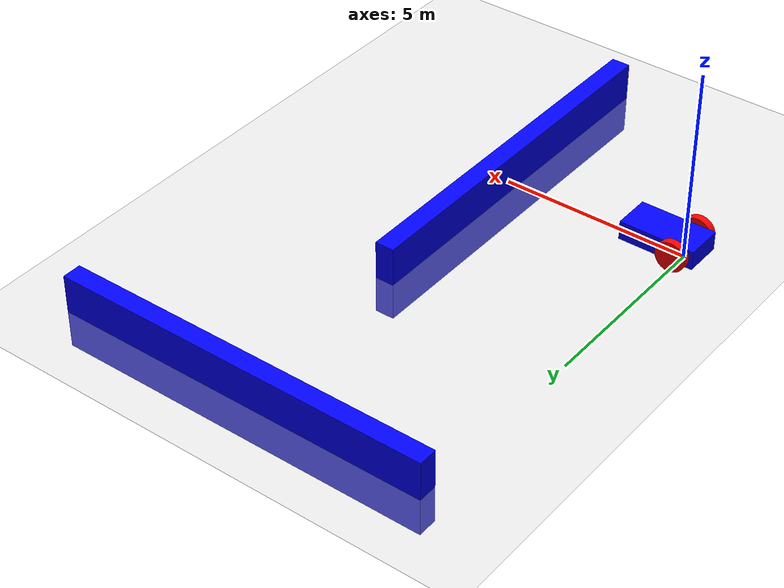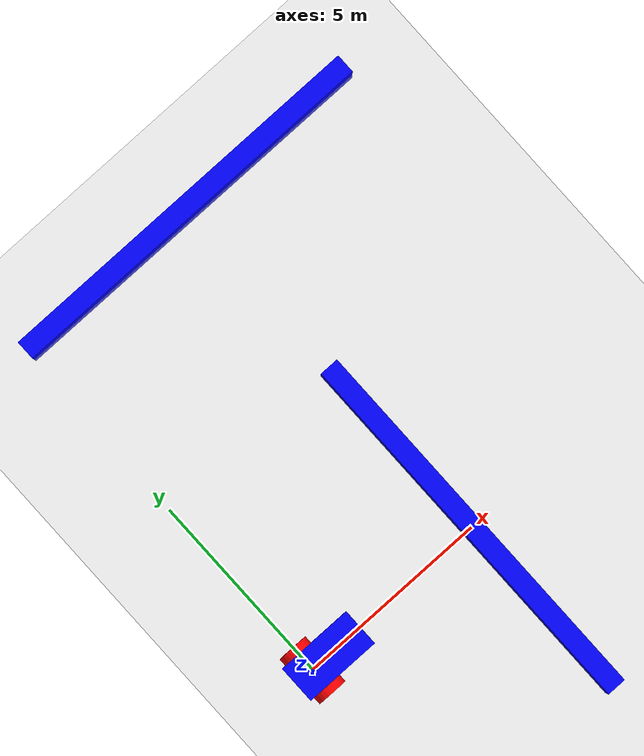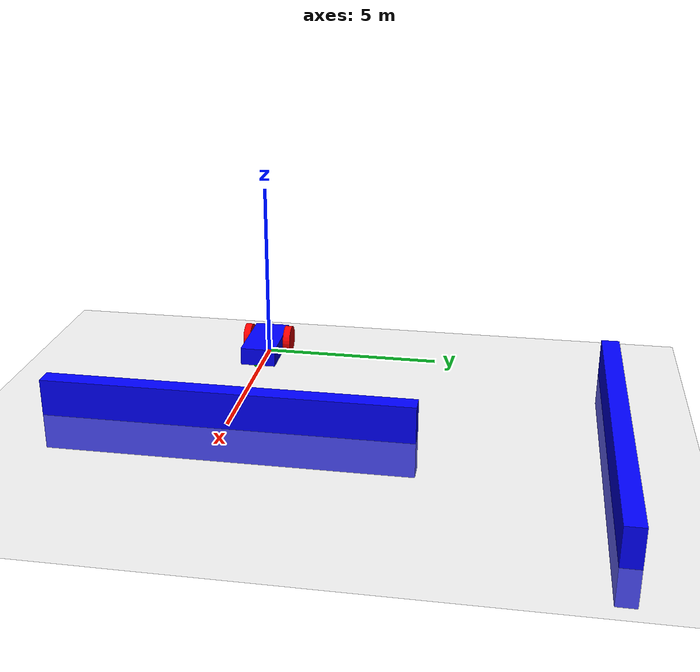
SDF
<?xml version="1.0" ?>
<sdf version="1.7">
    <world name="car_world">
        <physics name="1ms" type="ignored">
            <max_step_size>0.001</max_step_size>
            <real_time_factor>1.0</real_time_factor>
        </physics>
        <plugin
            filename="ignition-gazebo-physics-system"
            name="ignition::gazebo::systems::Physics">
        </plugin>
        <plugin
            filename="ignition-gazebo-user-commands-system"
            name="ignition::gazebo::systems::UserCommands">
        </plugin>
        <plugin
            filename="ignition-gazebo-scene-broadcaster-system"
            name="ignition::gazebo::systems::SceneBroadcaster">
        </plugin>
        <plugin filename="gz-sim-imu-system"
                name="gz::sim::systems::Imu">
        </plugin>
        <plugin filename="gz-sim-contact-system"
                name="gz::sim::systems::Contact">
        </plugin>
        <plugin
                filename="gz-sim-sensors-system"
                name="gz::sim::systems::Sensors">
                <render_engine>ogre2</render_engine>
        </plugin>
        <gui fullscreen="0">

            <!-- 3D scene -->
            <plugin filename="GzScene3D" name="3D View">
                <ignition-gui>
                <title>3D View</title>
                <property type="bool" key="showTitleBar">false</property>
                <property type="string" key="state">docked</property>
                </ignition-gui>

                <engine>ogre2</engine>
                <scene>scene</scene>
                <ambient_light>0.4 0.4 0.4</ambient_light>
                <background_color>0.8 0.8 0.8</background_color>
            </plugin>

            <!-- World control -->
            <plugin filename="WorldControl" name="World control">
                <ignition-gui>
                <title>World control</title>
                <property type="bool" key="showTitleBar">false</property>
                <property type="bool" key="resizable">false</property>
                <property type="double" key="height">72</property>
                <property type="double" key="width">121</property>
                <property type="double" key="z">1</property>

                <property type="string" key="state">floating</property>
                <anchors target="3D View">
                    <line own="left" target="left"/>
                    <line own="bottom" target="bottom"/>
                </anchors>
                </ignition-gui>

                <play_pause>true</play_pause>
                <step>true</step>
                <start_paused>true</start_paused>
                <service>/world/car_world/control</service>
                <stats_topic>/world/car_world/stats</stats_topic>
            </plugin>

            <!-- World statistics -->
            <plugin filename="WorldStats" name="World stats">
                <ignition-gui>
                <title>World stats</title>
                <property type="bool" key="showTitleBar">false</property>
                <property type="bool" key="resizable">false</property>
                <property type="double" key="height">110</property>
                <property type="double" key="width">290</property>
                <property type="double" key="z">1</property>

                <property type="string" key="state">floating</property>
                <anchors target="3D View">
                    <line own="right" target="right"/>
                    <line own="bottom" target="bottom"/>
                </anchors>
                </ignition-gui>

                <sim_time>true</sim_time>
                <real_time>true</real_time>
                <real_time_factor>true</real_time_factor>
                <iterations>true</iterations>
                <topic>/world/car_world/stats</topic>

            </plugin>

            <!-- Entity tree -->
            <plugin filename="EntityTree" name="Entity tree">
            </plugin>

        </gui>

        <light type="directional" name="sun">
            <cast_shadows>true</cast_shadows>
            <pose>0 0 10 0 0 0</pose>
            <diffuse>0.8 0.8 0.8 1</diffuse>
            <specular>0.2 0.2 0.2 1</specular>
            <attenuation>
                <range>1000</range>
                <constant>0.9</constant>
                <linear>0.01</linear>
                <quadratic>0.001</quadratic>
            </attenuation>
            <direction>-0.5 0.1 -0.9</direction>
        </light>

        <model name="ground_plane">
            <static>true</static>
            <link name="link">
                <collision name="collision">
                <geometry>
                    <plane>
                    <normal>0 0 1</normal>
                    </plane>
                </geometry>
                </collision>
                <visual name="visual">
                <geometry>
                    <plane>
                    <normal>0 0 1</normal>
                    <size>100 100</size>
                    </plane>
                </geometry>
                <material>
                    <ambient>0.8 0.8 0.8 1</ambient>
                    <diffuse>0.8 0.8 0.8 1</diffuse>
                    <specular>0.8 0.8 0.8 1</specular>
                </material>
                </visual>
            </link>
        </model>

        <model name='vehicle_blue' canonical_link='chassis'>
            <pose relative_to='world'>0 0 0 0 0 0</pose>   <!--the pose is relative to the world by default-->
            <frame name="lidar_frame" attached_to='chassis'>
                <pose>0.8 0 0.5 0 0 0</pose>
            </frame>
            <!--chassis-->
            <link name='chassis'>
                <pose relative_to='__model__'>0.5 0 0.4 0 0 0</pose>
                <inertial> <!--inertial properties of the link mass, inertia matix-->
                    <mass>1.14395</mass>
                    <inertia>
                        <ixx>0.095329</ixx>
                        <ixy>0</ixy>
                        <ixz>0</ixz>
                        <iyy>0.381317</iyy>
                        <iyz>0</iyz>
                        <izz>0.476646</izz>
                    </inertia>
                </inertial>
                <visual name='visual'>
                    <geometry>
                        <box>
                            <size>2.0 1.0 0.5</size>
                        </box>
                    </geometry>
                    <!--Color of the link-->
                    <material>
                        <ambient>0.0 0.0 1.0 1</ambient>
                        <diffuse>0.0 0.0 1.0 1</diffuse>
                        <specular>0.0 0.0 1.0 1</specular>
                    </material>
                </visual>
                <collision name='collision'>
                    <geometry>
                        <box>
                            <size>2.0 1.0 0.5</size>
                        </box>
                    </geometry>
                </collision>
                <sensor name="imu_sensor" type="imu">
                    <always_on>1</always_on>
                    <update_rate>1</update_rate>
                    <visualize>true</visualize>
                    <topic>imu</topic>
                </sensor>
                <plugin
                    filename="gz-sim-sensors-system"
                    name="gz::sim::systems::Sensors">
                    <render_engine>ogre2</render_engine>
                </plugin>
                <sensor name='gpu_lidar' type='gpu_lidar'>"
                    <pose relative_to='lidar_frame'>0 0 0 0 0 0</pose>
                    <topic>lidar</topic>
                    <update_rate>10</update_rate>
                    <ray>
                        <scan>
                            <horizontal>
                                <samples>640</samples>
                                <resolution>1</resolution>
                                <min_angle>-1.396263</min_angle>
                                <max_angle>1.396263</max_angle>
                            </horizontal>
                            <vertical>
                                <samples>1</samples>
                                <resolution>0.01</resolution>
                                <min_angle>0</min_angle>
                                <max_angle>0</max_angle>
                            </vertical>
                        </scan>
                        <range>
                            <min>0.08</min>
                            <max>10.0</max>
                            <resolution>0.01</resolution>
                        </range>
                    </ray>
                    <always_on>1</always_on>
                    <visualize>true</visualize>
                </sensor>
            </link>

            <!--Left wheel-->
            <link name='left_wheel'>
                <pose relative_to="chassis">-0.5 0.6 0 -1.5707 0 0</pose> <!--angles are in radian-->
                <inertial>
                    <mass>1</mass>
                    <inertia>
                        <ixx>0.043333</ixx>
                        <ixy>0</ixy>
                        <ixz>0</ixz>
                        <iyy>0.043333</iyy>
                        <iyz>0</iyz>
                        <izz>0.08</izz>
                    </inertia>
                </inertial>
                <visual name='visual'>
                    <geometry>
                        <cylinder>
                            <radius>0.4</radius>
                            <length>0.2</length>
                        </cylinder>
                    </geometry>
                    <material>
                        <ambient>1.0 0.0 0.0 1</ambient>
                        <diffuse>1.0 0.0 0.0 1</diffuse>
                        <specular>1.0 0.0 0.0 1</specular>
                    </material>
                </visual>
                <collision name='collision'>
                    <geometry>
                        <cylinder>
                            <radius>0.4</radius>
                            <length>0.2</length>
                        </cylinder>
                    </geometry>
                </collision>
            </link>

            <!--The same as left wheel but with different position-->
            <link name='right_wheel'>
                <pose relative_to="chassis">-0.5 -0.6 0 -1.5707 0 0</pose> <!--angles are in radian-->
                <inertial>
                    <mass>1</mass>
                    <inertia>
                        <ixx>0.043333</ixx>
                        <ixy>0</ixy>
                        <ixz>0</ixz>
                        <iyy>0.043333</iyy>
                        <iyz>0</iyz>
                        <izz>0.08</izz>
                    </inertia>
                </inertial>
                <visual name='visual'>
                    <geometry>
                        <cylinder>
                            <radius>0.4</radius>
                            <length>0.2</length>
                        </cylinder>
                    </geometry>
                    <material>
                        <ambient>1.0 0.0 0.0 1</ambient>
                        <diffuse>1.0 0.0 0.0 1</diffuse>
                        <specular>1.0 0.0 0.0 1</specular>
                    </material>
                </visual>
                <collision name='collision'>
                    <geometry>
                        <cylinder>
                            <radius>0.4</radius>
                            <length>0.2</length>
                        </cylinder>
                    </geometry>
                </collision>
            </link>

            <!--arbitrary frame-->
            <frame name="caster_frame" attached_to='chassis'>
                <pose>0.8 0 -0.2 0 0 0</pose>
            </frame>

            <!--caster wheel-->
            <link name='caster'>
                <pose relative_to='caster_frame'/>
                <inertial>
                    <mass>1</mass>
                    <inertia>
                        <ixx>0.016</ixx>
                        <ixy>0</ixy>
                        <ixz>0</ixz>
                        <iyy>0.016</iyy>
                        <iyz>0</iyz>
                        <izz>0.016</izz>
                    </inertia>
                </inertial>
                <visual name='visual'>
                    <geometry>
                        <sphere>
                            <radius>0.2</radius>
                        </sphere>
                    </geometry>
                    <material>
                        <ambient>0.0 1 0.0 1</ambient>
                        <diffuse>0.0 1 0.0 1</diffuse>
                        <specular>0.0 1 0.0 1</specular>
                    </material>
                </visual>
                <collision name='collision'>
                    <geometry>
                        <sphere>
                            <radius>0.2</radius>
                        </sphere>
                    </geometry>
                </collision>
            </link>

            <!--left wheel joint-->
            <joint name='left_wheel_joint' type='revolute'>
                <pose relative_to='left_wheel'/>
                <parent>chassis</parent>
                <child>left_wheel</child>
                <axis>
                    <xyz expressed_in='__model__'>0 1 0</xyz> <!--can be descired to any frame or even arbitrary frames-->
                    <limit>
                        <lower>-1.79769e+308</lower>    <!--negative infinity-->
                        <upper>1.79769e+308</upper>     <!--positive infinity-->
                    </limit>
                </axis>
            </joint>

            <!--right wheel joint-->
            <joint name='right_wheel_joint' type='revolute'>
                <pose relative_to='right_wheel'/>
                <parent>chassis</parent>
                <child>right_wheel</child>
                <axis>
                    <xyz expressed_in='__model__'>0 1 0</xyz>
                    <limit>
                        <lower>-1.79769e+308</lower>    <!--negative infinity-->
                        <upper>1.79769e+308</upper>     <!--positive infinity-->
                    </limit>
                </axis>
            </joint>

            <!--caster wheel joint--> <!--pose defult value is the child-->
            <joint name='caster_wheel' type='ball'>
                <parent>chassis</parent>
                <child>caster</child>
            </joint>
            <plugin
                filename="gz-sim-diff-drive-system"
                name="gz::sim::systems::DiffDrive">
                <left_joint>left_wheel_joint</left_joint>
                <right_joint>right_wheel_joint</right_joint>
                <wheel_separation>1.25</wheel_separation>
                <wheel_radius>0.3</wheel_radius>
                <odom_publish_frequency>1</odom_publish_frequency>
            </plugin>
        </model>
        <model name='wall_1'>
            <static>true</static>
            <pose>5 0 0 0 0 0</pose><!--pose relative to the world-->
            <link name='box'>
                <visual name='visual'>
                    <geometry>
                        <box>
                            <size>0.5 10.0 2.0</size>
                        </box>
                    </geometry>
                    <material>
                        <ambient>0.0 0.0 1.0 1</ambient>
                        <diffuse>0.0 0.0 1.0 1</diffuse>
                        <specular>0.0 0.0 1.0 1</specular>
                    </material>
                </visual>
                <collision name='collision'>
                    <geometry>
                        <box>
                            <size>0.5 10.0 2.0</size>
                        </box>
                    </geometry>
                </collision>
                <sensor name='sensor_contact' type='contact'>
                    <contact>
                        <collision>collision</collision>
                    </contact>
                </sensor>
            </link>
            <plugin filename="gz-sim-touchplugin-system"
                    name="gz::sim::systems::TouchPlugin">
                <target>vehicle_blue</target>
                <namespace>wall_1</namespace>
                <time>0.001</time>
                <enabled>true</enabled>
            </plugin>
        </model>

        <model name='wall_2'>
            <static>true</static>
            <pose>5 10 0 0 0 1.5708</pose><!--pose relative to the world-->
            <link name='box'>
                <visual name='visual'>
                    <geometry>
                        <box>
                            <size>0.5 10.0 2.0</size>
                        </box>
                    </geometry>
                    <material>
                        <ambient>0.0 0.0 1.0 1</ambient>
                        <diffuse>0.0 0.0 1.0 1</diffuse>
                        <specular>0.0 0.0 1.0 1</specular>
                    </material>
                </visual>
                <collision name='collision'>
                    <geometry>
                        <box>
                            <size>0.5 10.0 2.0</size>
                        </box>
                    </geometry>
                </collision>
                <sensor name='sensor_contact' type='contact'>
                    <contact>
                        <collision>collision</collision>
                    </contact>
                </sensor>
            </link>
            <plugin filename="gz-sim-touchplugin-system"
                    name="gz::sim::systems::TouchPlugin">
                <target>vehicle_blue</target>
                <namespace>wall_2</namespace>
                <time>0.001</time>
                <enabled>true</enabled>
            </plugin>
        </model>

        <plugin filename="gz-sim-triggered-publisher-system"
                name="gz::sim::systems::TriggeredPublisher">
            <input type="gz.msgs.Boolean" topic="/wall/touched">
                <match>data: true</match>
            </input>
            <output type="gz.msgs.Twist" topic="/cmd_vel">
                linear: {x: 0.0}, angular: {z: 0.0}
            </output>
        </plugin>
    </world>
</sdf>
